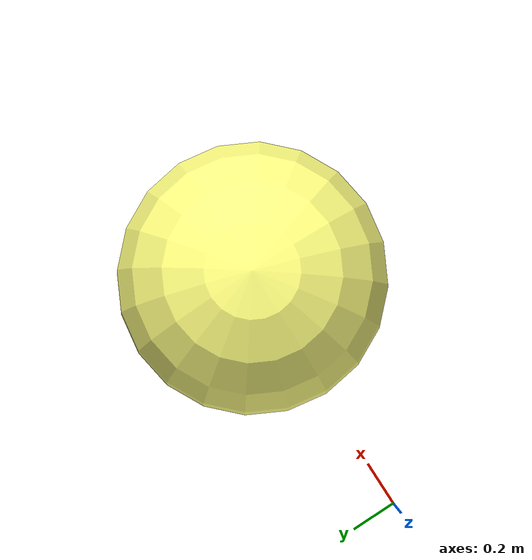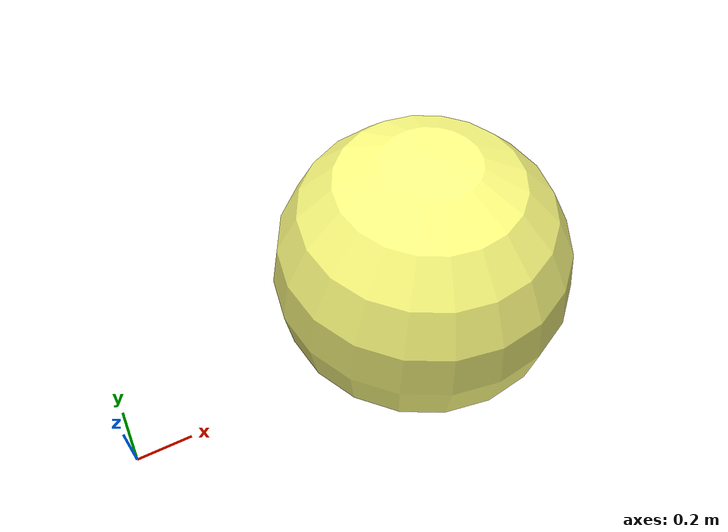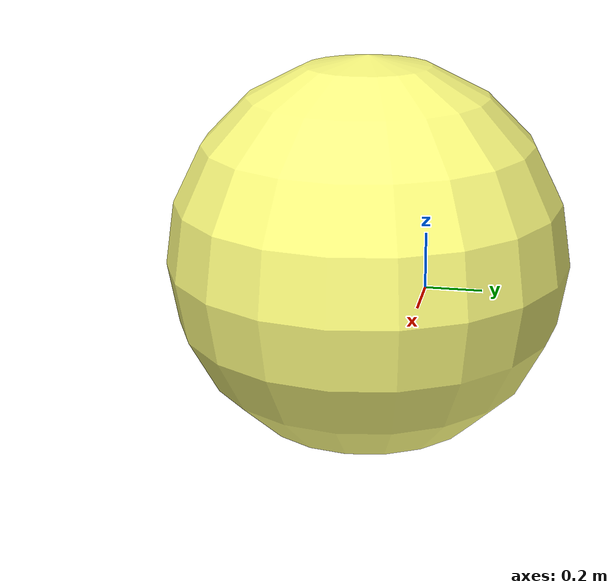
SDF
<?xml version="1.0" ?>
<sdf version="1.6">
  <world name="default">
    <scene>
      <ambient>0.4 0.4 0.4 1</ambient>
      <background>0 0 0 1</background>
      <shadows>false</shadows>
    </scene>
    <light type="directional" name="some_light">
      <diffuse>0 1 0 1.0</diffuse>
      <specular>1 1 1 1</specular>
      <direction>0 0 -1</direction>
    </light>
    <light type="directional" name="some_light2">
      <diffuse>1 0 0 0</diffuse>
      <specular>1 1 1 0</specular>
      <direction>1 0 1</direction>
    </light>
    <light type="directional" name="some_light3">
      <diffuse>0 0 0.75 0</diffuse>
      <specular>1 1 1 0</specular>
      <direction>-1 0 1</direction>
    </light>

    <model name="diffuse_sphere">
      <static>true</static>
      <link name="link">
        <visual name="diffuse_only">
          <pose>1.1 0 0.5 0 0 0</pose>
          <geometry>
            <sphere>
              <radius>0.5</radius>
            </sphere>
          </geometry>
          <material>
            <ambient>0 0 0 1</ambient>
            <specular>0 0 0 1</specular>
            <diffuse>1 1 0.5 1</diffuse>
            <emissive>0 0 0 1</emissive>
          </material>
        </visual>
      </link>
    </model>
  </world>
</sdf>
